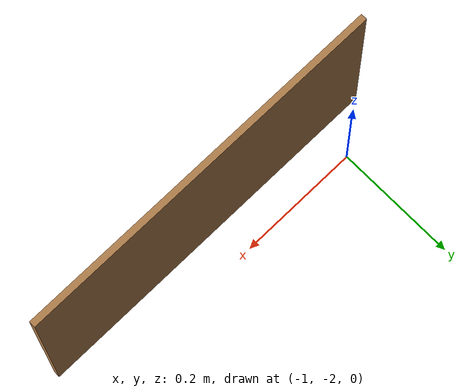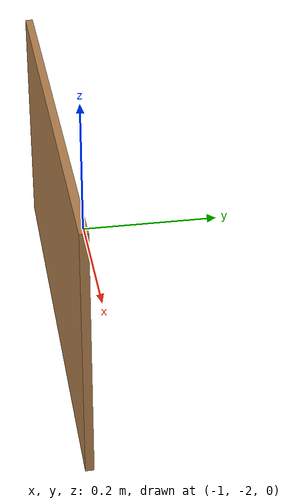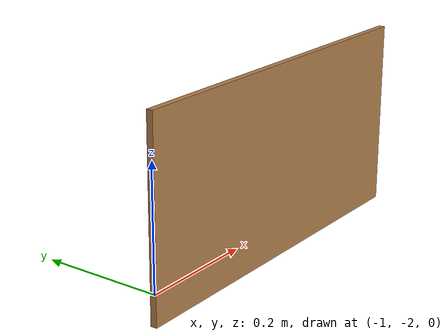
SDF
<?xml version='1.0'?>
<sdf version='1.7'>
  <model name='Fusta06'>
    <pose>-0.5375 -1.0325 0 0 -0 0</pose>
    <link name='Wall_4'>
      <collision name='Wall_4_Collision'>
        <geometry>
          <box>
            <size>0.6 0.01 0.3</size>
          </box>
        </geometry>
        <pose>0 0 0.15 0 -0 0</pose>
      </collision>
      <visual name='Wall_4_Visual'>
        <pose>0 0 0.15 0 -0 0</pose>
        <geometry>
          <box>
            <size>0.6 0.01 0.3</size>
          </box>
        </geometry>
        <material>
          <script>
            <uri>file://media/materials/scripts/gazebo.material</uri>
            <name>Gazebo/Wood</name>
          </script>
          <ambient>1 1 1 1</ambient>
        </material>
        <meta>
          <layer>0</layer>
        </meta>
      </visual>
      <pose>-0.2375 -1.0275 0 0 -0 0</pose>
    </link>
    <static>1</static>
  </model>
</sdf>
